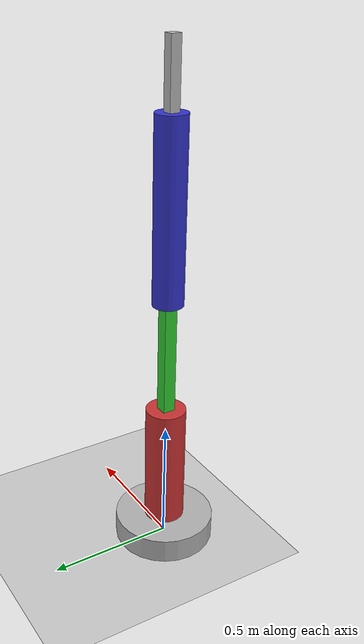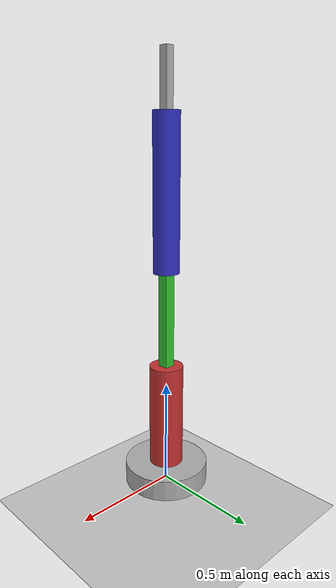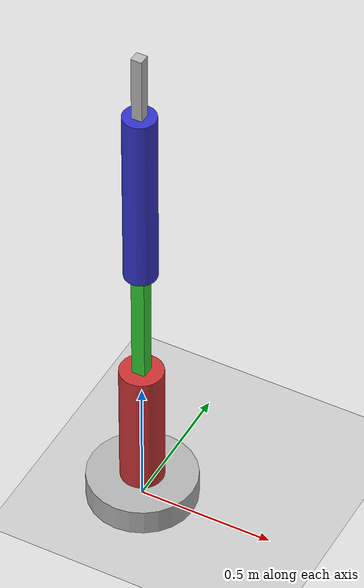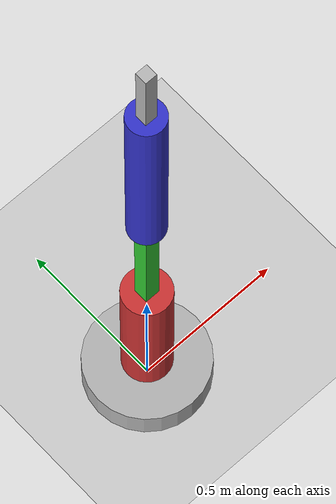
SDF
<?xml version="1.0" ?>
<sdf version="1.7">
  <world name="robotic_arm_world">
    <!-- Add a ground plane -->
    <include>
      <uri>model://ground_plane</uri>
    </include>

    <!-- Add a light source -->
    <include>
      <uri>model://sun</uri>
    </include>

    <!-- Include the robotic arm model (Absolute Path) -->
    <include>
      <uri>file:///home/giordano/robotic_arm/models/fanuc_crx_10ia</uri>
      <pose>0 0 0 0 0 0</pose>
    </include>
  </world>
</sdf>

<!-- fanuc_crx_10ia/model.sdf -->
<sdf version="1.7">
  <model name="fanuc_crx_10ia">
    <pose>0 0 0 0 0 0</pose>

    <!-- Base Link -->
    <link name="base">
      <pose>0 0 0.05 0 0 0</pose>
      <collision name="base_collision">
        <geometry>
          <cylinder>
            <radius>0.2</radius>
            <length>0.1</length>
          </cylinder>
        </geometry>
      </collision>
      <visual name="base_visual">
        <geometry>
          <cylinder>
            <radius>0.2</radius>
            <length>0.1</length>
          </cylinder>
        </geometry>
        <material>
          <ambient>0.7 0.7 0.7 1</ambient>
          <diffuse>0.7 0.7 0.7 1</diffuse>
        </material>
      </visual>
    </link>

    <!-- Joint 1 -->
    <joint name="joint_1" type="revolute">
      <parent>base</parent>
      <child>link_1</child>
      <axis>
        <xyz>0 0 1</xyz>
        <limit>
          <lower>-3.14159</lower>
          <upper>3.14159</upper>
        </limit>
        <dynamics>
          <damping>0.1</damping>
          <friction>0.1</friction>
        </dynamics>
      </axis>
    </joint>

    <!-- Link 1 -->
    <link name="link_1">
      <pose>0 0 0.3 0 0 0</pose>
      <collision name="link_1_collision">
        <geometry>
          <cylinder>
            <radius>0.08</radius>
            <length>0.6</length>
          </cylinder>
        </geometry>
      </collision>
      <visual name="link_1_visual">
        <geometry>
          <cylinder>
            <radius>0.08</radius>
            <length>0.6</length>
          </cylinder>
        </geometry>
        <material>
          <ambient>0.8 0.2 0.2 1</ambient>
          <diffuse>0.8 0.2 0.2 1</diffuse>
        </material>
      </visual>
    </link>

    <!-- Joint 2 -->
    <joint name="joint_2" type="revolute">
      <parent>link_1</parent>
      <child>link_2</child>
      <axis>
        <xyz>0 1 0</xyz>
        <limit>
          <lower>-1.57</lower>
          <upper>1.57</upper>
        </limit>
        <dynamics>
          <damping>0.1</damping>
          <friction>0.1</friction>
        </dynamics>
      </axis>
    </joint>

    <!-- Link 2 -->
    <link name="link_2">
      <pose>0 0 0.8 0 0 0</pose>
      <collision name="link_2_collision">
        <geometry>
          <box>
            <size>0.05 0.05 0.5</size>
          </box>
        </geometry>
      </collision>
      <visual name="link_2_visual">
        <geometry>
          <box>
            <size>0.05 0.05 0.5</size>
          </box>
        </geometry>
        <material>
          <ambient>0.2 0.8 0.2 1</ambient>
          <diffuse>0.2 0.8 0.2 1</diffuse>
        </material>
      </visual>
    </link>

    <!-- Joint 3 -->
    <joint name="joint_3" type="revolute">
      <parent>link_2</parent>
      <child>link_3</child>
      <axis>
        <xyz>0 -1 0</xyz>
        <limit>
          <lower>-3.14</lower>
          <upper>3.14</upper>
        </limit>
        <dynamics>
          <damping>0.1</damping>
          <friction>0.1</friction>
        </dynamics>
      </axis>
    </joint>

    <!-- Link 3 -->
    <link name="link_3">
      <pose>0 0 1.4 0 0 0</pose>
      <collision name="link_3_collision">
        <geometry>
          <cylinder>
            <radius>0.06</radius>
            <length>0.7</length>
          </cylinder>
        </geometry>
      </collision>
      <visual name="link_3_visual">
        <geometry>
          <cylinder>
            <radius>0.06</radius>
            <length>0.7</length>
          </cylinder>
        </geometry>
        <material>
          <ambient>0.2 0.2 0.8 1</ambient>
          <diffuse>0.2 0.2 0.8 1</diffuse>
        </material>
      </visual>
    </link>

    <!-- Joint 4 -->
    <joint name="joint_4" type="revolute">
      <parent>link_3</parent>
      <child>link_4</child>
      <axis>
        <xyz>-1 0 0</xyz>
        <limit>
          <lower>-3.14</lower>
          <upper>3.14</upper>
        </limit>
      </axis>
    </joint>

    <!-- Link 4 -->
    <link name="link_4">
      <pose>0 0 1.8 0 0 0</pose>
      <collision name="link_4_collision">
        <geometry>
          <box>
            <size>0.04 0.04 0.4</size>
          </box>
        </geometry>
      </collision>
      <visual name="link_4_visual">
        <geometry>
          <box>
            <size>0.04 0.04 0.4</size>
          </box>
        </geometry>
      </visual>
    </link>

  </model>
</sdf>
